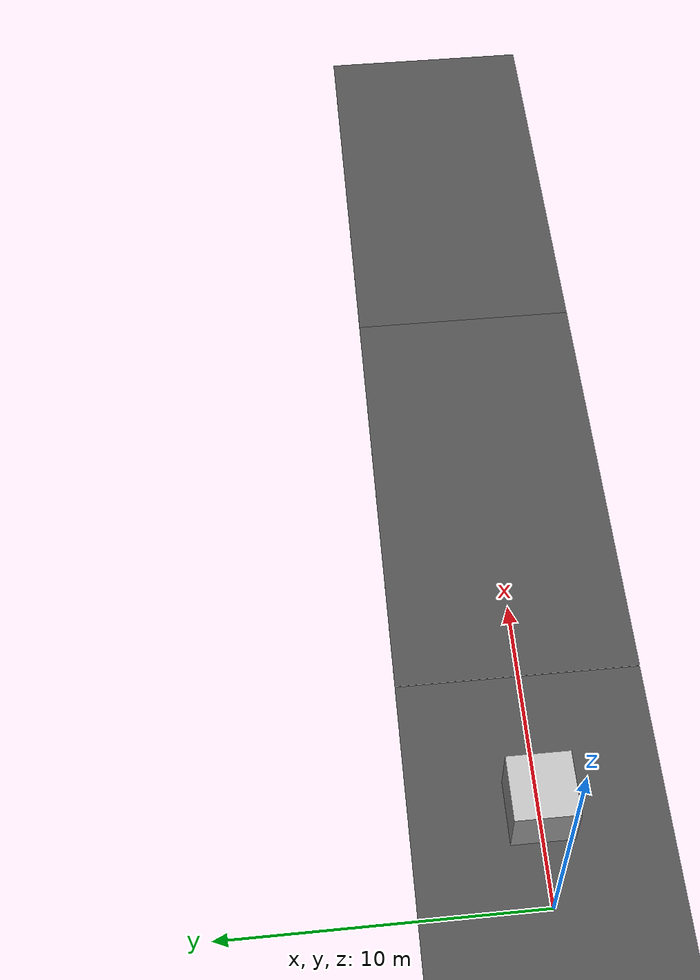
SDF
<?xml version="1.0" ?>
<sdf version="1.4">
  <world name="straight_road">
    <scene>
      <ambient>1.0 1.0 1.0 1.0</ambient>
      <background>0.7 0.7 0.7 1.0</background>
      <shadows>true</shadows>
      <grid>false</grid>
    </scene>

    <include>
        <uri>model://sun</uri>
    </include>

    <model name="straight_road">
      <static>true</static>
      <link name="link">
        <collision name="collision">
          <geometry>
            <plane>
              <normal>0 0 1</normal>
              <size>45 8</size>
            </plane>
          </geometry>
          <surface>
            <friction>
              <ode>
                <mu>100</mu>
                <mu2>50</mu2>
              </ode>
            </friction>
          </surface>
        </collision>

        <visual name="road1">
          <cast_shadows>true</cast_shadows>
          <geometry>
            <plane>
              <normal>0 0 1</normal>
              <size>15 8</size>
            </plane>
          </geometry>
          <material>
            <script>
              <uri>file://simulation/models/world/materials/road.material</uri>
              <name>Gazebo/road</name>
            </script>
          </material>
        </visual>

        <visual name="road2">
          <cast_shadows>true</cast_shadows>
          <pose>15 0 0 0 0 0</pose>
          <geometry>
            <plane>
              <normal>0 0 1</normal>
              <size>15 8</size>
            </plane>
          </geometry>
          <material>
            <script>
              <uri>file://simulation/models/world/materials/road.material</uri>
              <name>Gazebo/road</name>
            </script>
          </material>
        </visual>

        <visual name="road3">
          <cast_shadows>true</cast_shadows>
          <pose>30 0 0 0 0 0</pose>
          <geometry>
            <plane>
              <normal>0 0 1</normal>
              <size>15 8</size>
            </plane>
          </geometry>
          <material>
            <script>
              <uri>file://simulation/models/world/materials/road.material</uri>
              <name>Gazebo/road</name>
            </script>
          </material>
        </visual>
      </link>

      <link name="obstacle_box">
        <visual name="obstacle_box_visual">
          <!--origin rpy="0 0 0" xyz="0 0 0"/-->
          <geometry>
            <box>
              <size> 2 2 2 </size>
            </box>
          </geometry>
          <pose> 3 0 1 0 -0 0</pose>
        </visual>
        <collision name="obstacle_box_collision">
          <geometry>
            <box>
              <size> 2 2 2 </size>
            </box>
          </geometry>
          <pose> 3 0 1 0 -0 0</pose>
        </collision>
      </link>

    </model>
  </world>
</sdf>
